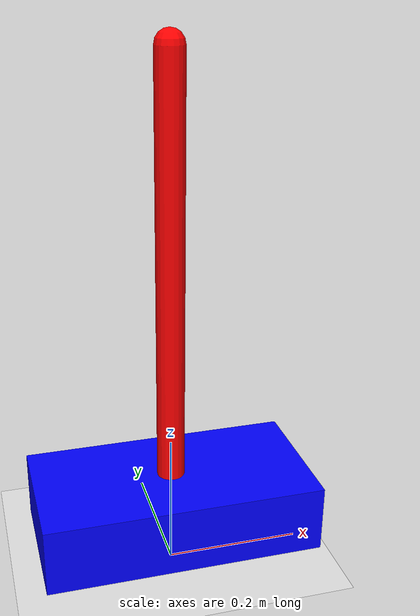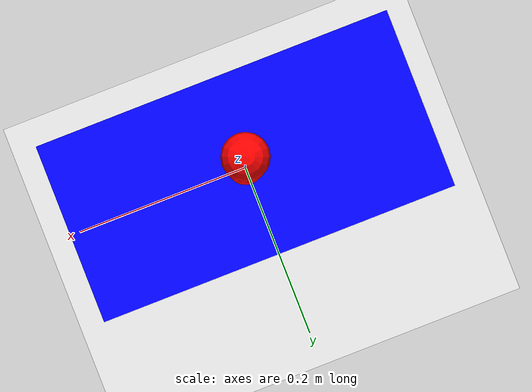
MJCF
<mujoco model="inverted_pendulum">
    <compiler angle="radian" coordinate="local" />

    <option gravity="0 0 -9.8" />

    <size njmax="100" nconmax="100"/>

    <default>
        <joint damping="1" limited="false"/>
        <geom friction="0.8 0.1 0.1" density="1000" margin="0.002" condim="1" contype="1" conaffinity="1"/>
    </default>

    <worldbody>
        <!-- Ground plane -->
        <geom name="ground" type="plane" size="5 5 0.1" rgba="0.9 0.9 0.9 1"/>

        <!-- Cart -->
        <body name="cart" pos="0 0 0.1">
            <joint name="slide_x" type="slide" axis="1 0 0" />
            <geom name="cart_geom" type="box" size="0.2 0.1 0.05" rgba="0 0 1 1"/>

            <!-- Pendulum attached to the cart -->
            <body name="pendulum" pos="0 0 0.05">
                <joint name="hinge" type="hinge" axis="0 1 0" pos="0 0 0.05"/>
                <geom name="pendulum_geom" type="capsule" fromto="0 0 0 0 0 0.6" size="0.02" rgba="1 0 0 1"/>
            </body>
        </body>
    </worldbody>

    <actuator>
        <!-- Actuator to move the cart -->
        <motor name="cart_motor" joint="slide_x" gear="100"/>
    </actuator>
</mujoco>
